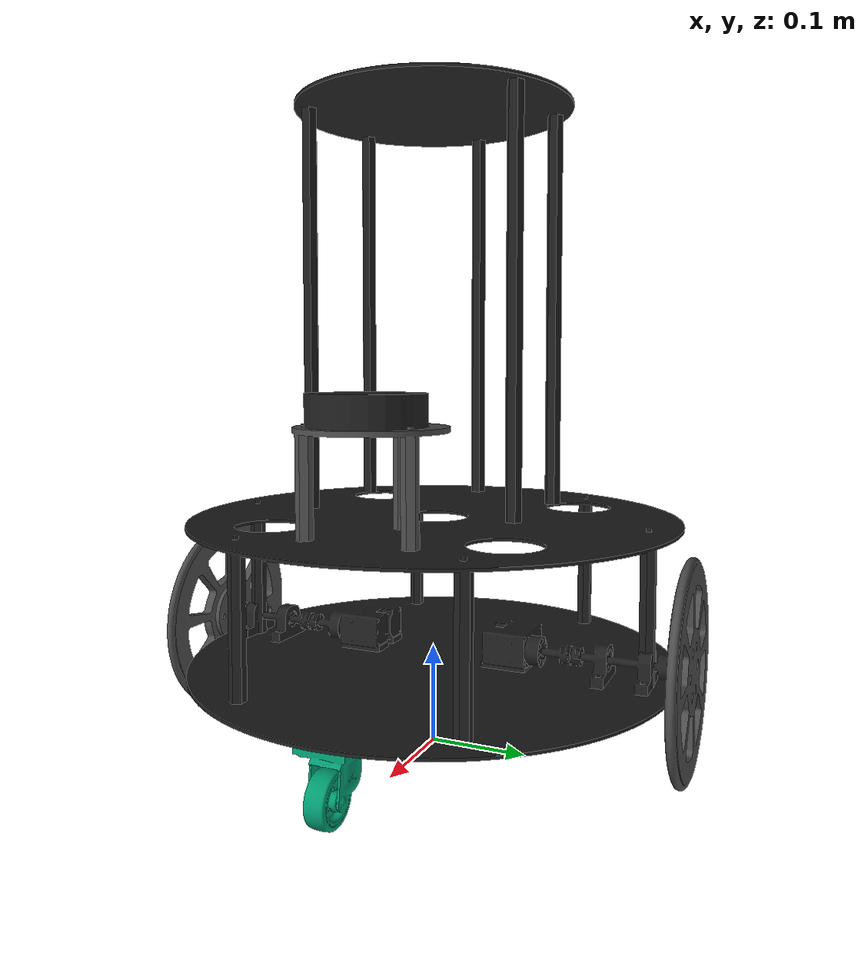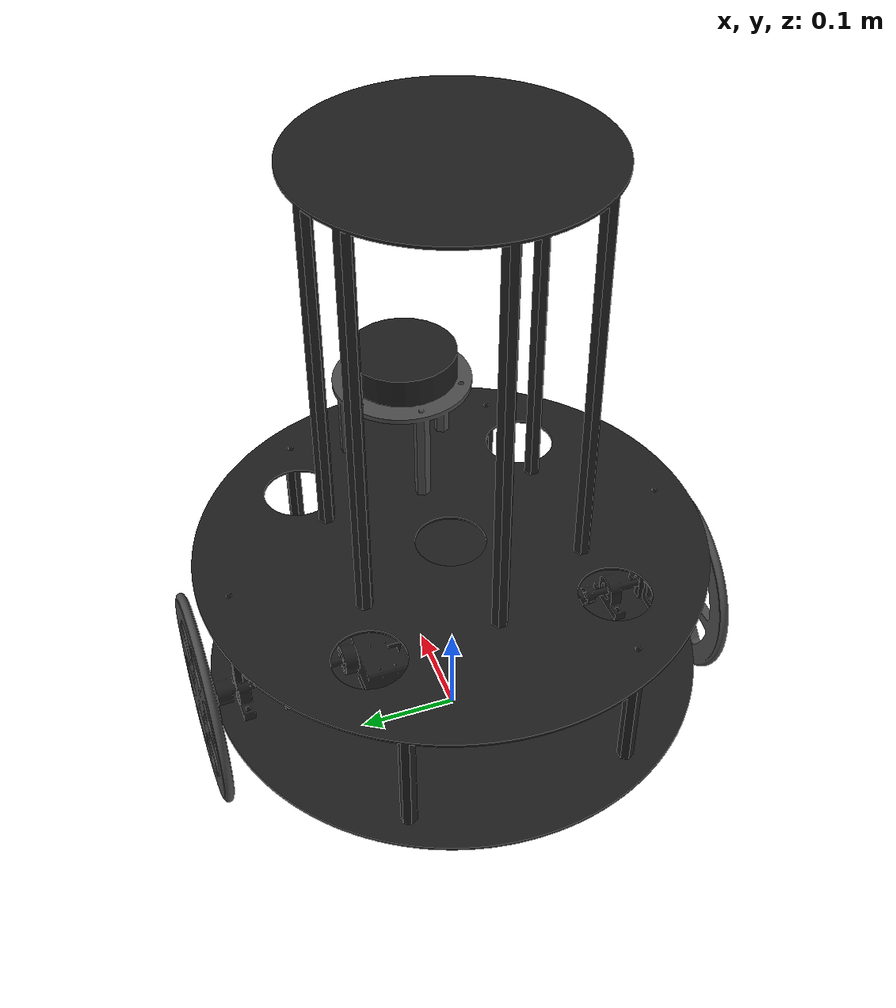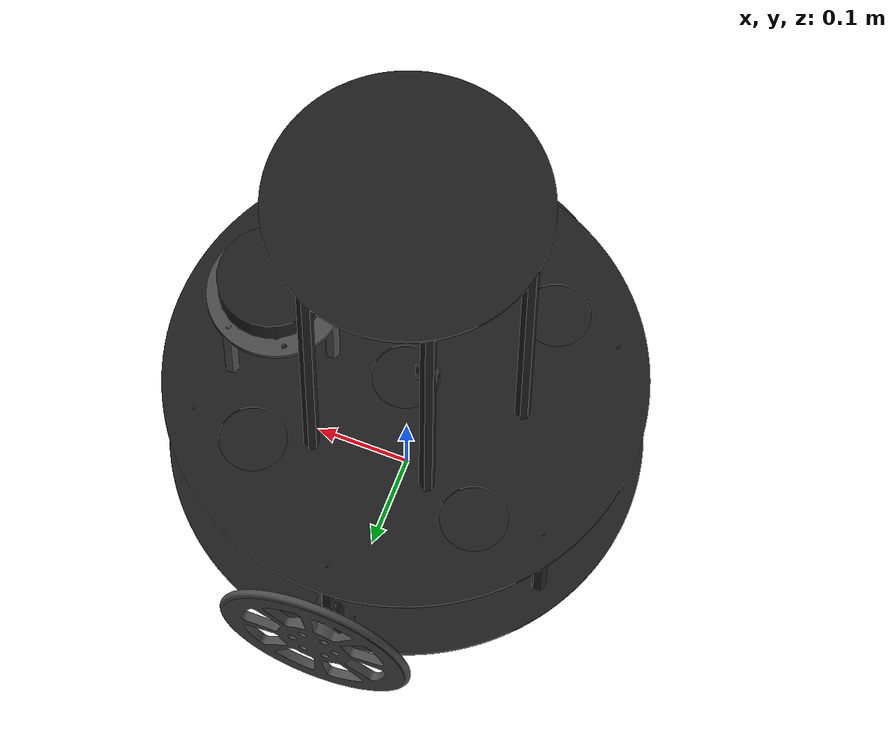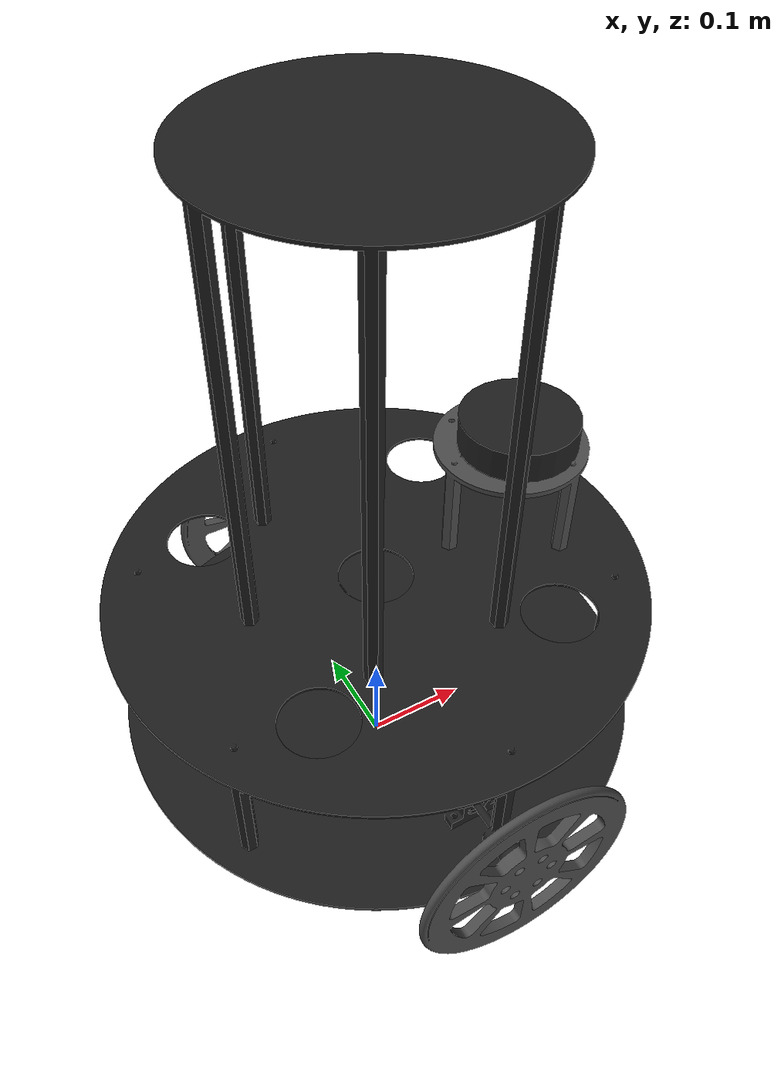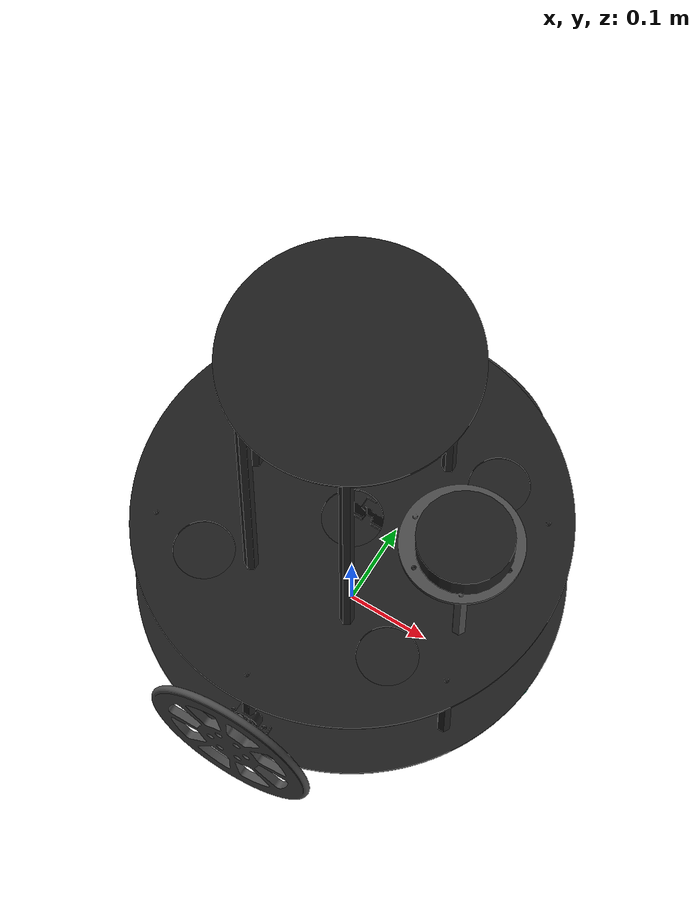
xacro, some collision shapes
<?xml version="1.0"?>

<robot name="pir2_robot" xmlns:xacro="http://www.ros.org/wiki/xacro">

  <xacro:include filename="$(find pir2_description)/urdf/common_properties.urdf.xacro"/>
  <xacro:include filename="$(find pir2_description)/urdf/materials.urdf.xacro"/>

  <xacro:include filename="$(find pir2_description)/urdf/body/bottom.urdf.xacro"/>
  <xacro:include filename="$(find pir2_description)/urdf/body/middle.urdf.xacro"/>
  <xacro:include filename="$(find pir2_description)/urdf/body/lds_plate.urdf.xacro"/>
  <xacro:include filename="$(find pir2_description)/urdf/body/top.urdf.xacro"/>
  <xacro:include filename="$(find pir2_description)/urdf/wheels/wheel.urdf.xacro"/>
  <xacro:include filename="$(find pir2_description)/urdf/lds/lds.urdf.xacro"/>

  <xacro:bottom_frame parent="base_footprint"/>
  <xacro:middle_frame parent="base_link"/>
  <xacro:lds_plate_frame parent="middle_link"/>
  <xacro:top_frame parent="middle_link"/>
  <xacro:lds parent="lds_plate_link" />
  <xacro:wheel parent="base_link" />

  <!-- =============== Gazebo =============== -->
  <gazebo>
    <plugin name="gazebo_ros_control" filename="libgazebo_ros_control.so">
      <robotNamespace>/pir2</robotNamespace>
      <robotSimType>gazebo_ros_control/DefaultRobotHWSim</robotSimType>
      <legacyModeNS>true</legacyModeNS>
    </plugin>
  </gazebo>

</robot>

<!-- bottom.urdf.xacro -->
<robot name="bottom_frame" xmlns:xacro="http://ros.org/wiki/xacro">

  <xacro:macro name="bottom_frame" params="parent" >
    <link name="base_footprint"/>

    <joint name="base_joint" type="fixed">
      <parent link="base_footprint"/>
      <child link="base_link" />
      <origin xyz="0 0 0.086" rpy="0 0 0"/>
    </joint>

    <link name="base_link">
      <visual>
        <origin xyz="0 0 0.0" rpy="0 0 0"/>
        <geometry>
          <mesh filename="package://pir2_description/meshes/base/bottom_frame.stl" scale="0.001 0.001 0.001"/>
        </geometry>
        <material name="light_black"/>
      </visual>

      <collision>
        <origin xyz="0 0 0" rpy="0 0 0"/>
        <geometry>
          <cylinder length="0.05" radius="0.285"/>
        </geometry>
      </collision>

      <inertial>
        <origin xyz="0 0 0.275" rpy="0 0 0"/>
        <mass value="3.0"/>
        <inertia ixx="0.31" ixy="0" ixz="0"
                 iyy="0.31" iyz="0"
                 izz="0.45" />
      </inertial>
    </link>

    <joint name="caster_front_joint" type="fixed">
      <parent link="base_link"/>
      <child link="caster_front_link"/>
      <origin xyz="0.2 0 0" rpy="0 0 0"/>
    </joint>

    <link name="caster_front_link">
      <visual>
        <origin xyz="0 0 0" rpy="0 0 0"/>
        <geometry>
          <!--box size="0.07 0.085 0.065"/-->
          <mesh filename="package://pir2_description/meshes/wheels/caster.stl" scale="0.001 0.001 0.001"/>
        </geometry>
        <material name="dark"/>
      </visual>
      <collision>
        <origin xyz="0 0.001 -0.025" rpy="0 0 0"/>
        <geometry>
          <sphere radius="0.0577"/>
        </geometry>
      </collision>

      <inertial>
        <origin xyz="0 0 0" />
        <mass value="0.05" />
        <inertia ixx="0.00005" ixy="0.0" ixz="0.0"
                 iyy="0.00005" iyz="0.0"
                 izz="0.00005" />
      </inertial>
    </link>

    <joint name="caster_rear_joint" type="fixed">
      <parent link="base_link"/>
      <child link="caster_rear_link"/>
      <origin xyz="-0.2 0 0" rpy="0 0 0"/>
    </joint>

    <link name="caster_rear_link">
      <visual>
        <origin xyz="0 0 0" rpy="0 0 0"/>
        <geometry>
          <!--box size="0.07 0.085 0.065"/-->
          <mesh filename="package://pir2_description/meshes/wheels/caster.stl" scale="0.001 0.001 0.001"/>
        </geometry>
        <material name="dark"/>
      </visual>
      <collision>
        <origin xyz="0 0.001 -0.025" rpy="0 0 0"/>
        <geometry>
          <sphere radius="0.0585"/>
        </geometry>
      </collision>

      <inertial>
        <origin xyz="0 0 0" />
        <mass value="0.05" />
        <inertia ixx="0.00005" ixy="0.0" ixz="0.0"
                 iyy="0.00005" iyz="0.0"
                 izz="0.00005" />
      </inertial>
    </link>
  </xacro:macro>

</robot>

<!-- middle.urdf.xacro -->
<robot name="middle_frame" xmlns:xacro="http://ros.org/wiki/xacro">

  <xacro:macro name="middle_frame" params="parent" >

    <joint name="middle_joint" type="fixed">
      <parent link="${parent}"/>
      <child link="middle_link" />
      <origin xyz="0 0 0.15" rpy="0 0 0"/>
    </joint>

    <link name="middle_link">
      <visual>
        <origin xyz="0 0 0.0" rpy="0 0 0"/>
        <geometry>
          <mesh filename="package://pir2_description/meshes/base/middle_frame.dae" scale="0.001 0.001 0.001"/>
        </geometry>
        <material name="light_black"/>
      </visual>

      <collision>
        <origin xyz="0 0 0" rpy="0 0 0"/>
        <geometry>
          <cylinder length="0.05" radius="0.285"/>
        </geometry>
      </collision>

      <inertial>
        <origin xyz="0 0 0" rpy="0 0 0"/>
        <mass value="0.8"/>
        <inertia ixx="0.008" ixy="0" ixz="0"
                 iyy="0.008" iyz="0"
                 izz="0.016" />
      </inertial>
    </link>

  </xacro:macro>

</robot>

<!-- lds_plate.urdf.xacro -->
<robot name="lds_plate_frame" xmlns:xacro="http://ros.org/wiki/xacro">

  <xacro:macro name="lds_plate_frame" params="parent" >

    <joint name="lds_plate_joint" type="fixed">
      <parent link="${parent}"/>
      <child link="lds_plate_link" />
      <origin xyz="0.14 0 0.10" rpy="0 0 0"/>
    </joint>

    <link name="lds_plate_link">
      <visual>
        <origin xyz="0 0 0.0" rpy="0 0 0"/>
        <geometry>
          <mesh filename="package://pir2_description/meshes/base/lds_frame.stl" scale="0.001 0.001 0.001"/>
        </geometry>
        <material name="dark"/>
      </visual>

      <collision>
        <origin xyz="0 0 0" rpy="0 0 0"/>
        <geometry>
          <cylinder length="0.03" radius="0.08"/>
        </geometry>
      </collision>

    </link>

    <gazebo reference="lds_plate_link">
      <mu1>0.2</mu1>
      <mu2>0.2</mu2>
      <material>Gazebo/DarkGrey</material>
    </gazebo>

  </xacro:macro>

</robot>

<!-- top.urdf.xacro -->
<robot name="top_plate" xmlns:xacro="http://ros.org/wiki/xacro">

  <xacro:macro name="top_frame" params="parent" >

    <joint name="top_joint" type="fixed">
      <parent link="${parent}"/>
      <child link="top_link" />
      <origin xyz="0 0 0.415" rpy="0 0 0"/>
    </joint>

    <link name="top_link">
      <visual>
        <origin xyz="0 0 0.0" rpy="0 0 0"/>
        <geometry>
          <mesh filename="package://pir2_description/meshes/base/top_frame.stl" scale="0.001 0.001 0.001"/>
        </geometry>
        <material name="light_black"/>
      </visual>

      <collision>
        <origin xyz="0 0 0" rpy="0 0 0"/>
        <geometry>
          <cylinder length="0.02" radius="0.14"/>
        </geometry>
      </collision>

    </link>

  </xacro:macro>

</robot>

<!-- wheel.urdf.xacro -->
<robot name="pir2_wheel" xmlns:xacro="http://ros.org/wiki/xacro">
  <xacro:include filename="$(find pir2_description)/urdf/wheels/wheel.gazebo.xacro"/>

  <xacro:macro name="wheel" params="parent" >
    <joint name="wheel_left_joint" type="continuous">
      <parent link="base_link"/>
      <child link="wheel_left_link"/>
      <origin xyz="0.0 0.26 0.023" rpy="-1.57 0 0"/>
      <axis xyz="0 0 1"/>
    </joint>

    <link name="wheel_left_link">
      <visual>
        <origin xyz="0 0 0" rpy="0 0 0"/>
        <geometry>
          <mesh filename="package://pir2_description/meshes/wheels/left_wheel2.stl" scale="0.001 0.001 0.001"/>
        </geometry>
        <material name="dark"/>
      </visual>

      <collision>
        <origin xyz="0 0 0" rpy="0 0 0"/>
        <geometry>
          <cylinder length="0.018" radius="0.108"/>
        </geometry>
      </collision>

      <inertial>
        <origin xyz="0 0 0" />
        <mass value="0.22" />
        <inertia ixx="0.0011" ixy="0" ixz="0"
                 iyy="0.0011" iyz="0"
                 izz="0.0017" />
        </inertial>

    </link>

    <joint name="wheel_right_joint" type="continuous">
      <parent link="base_link"/>
      <child link="wheel_right_link"/>
      <origin xyz="0.0 -0.26 0.023" rpy="-1.57 0 0"/>
      <axis xyz="0 0 1"/>
    </joint>

    <link name="wheel_right_link">
      <visual>
        <origin xyz="0 0 0" rpy="0 0 0"/>
        <geometry>
          <mesh filename="package://pir2_description/meshes/wheels/right_wheel2.stl" scale="0.001 0.001 0.001"/>
        </geometry>
        <material name="dark"/>
      </visual>

      <collision>
        <origin xyz="0 0 0" rpy="0 0 0"/>
        <geometry>
          <cylinder length="0.018" radius="0.108"/>
        </geometry>
      </collision>

      <inertial>
        <origin xyz="0 0 0" />
        <mass value="0.22" />
        <inertia ixx="0.0011" ixy="0" ixz="0"
                 iyy="0.0011" iyz="0"
                 izz="0.0017" />
        </inertial>
    </link>
  </xacro:macro>

</robot>

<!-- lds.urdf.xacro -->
<robot name="hlds_support" xmlns:xacro="http://ros.org/wiki/xacro">

  <xacro:include filename="$(find pir2_description)/urdf/lds/lds.gazebo.xacro"/>

  <xacro:macro name="lds" params="parent" >

    <joint name="scan_joint" type="fixed">
      <parent link="${parent}"/>
      <child link="base_scan"/>
      <origin xyz="-0.01 0 0.023" rpy="0 0 0"/>
    </joint>

    <link name="base_scan">
      <visual>
        <origin xyz="0 0 0" rpy="0 0 0"/>
        <geometry>
          <mesh filename="package://pir2_description/meshes/sensors/lds.stl" scale="0.001 0.001 0.001"/>
        </geometry>
        <material name="dark"/>
      </visual>

      <collision>
        <origin xyz="0.015 0 -0.0065" rpy="0 0 0"/>
        <geometry>
          <cylinder length="0.0315" radius="0.055"/>
        </geometry>
      </collision>

    </link>

  </xacro:macro>

</robot>
